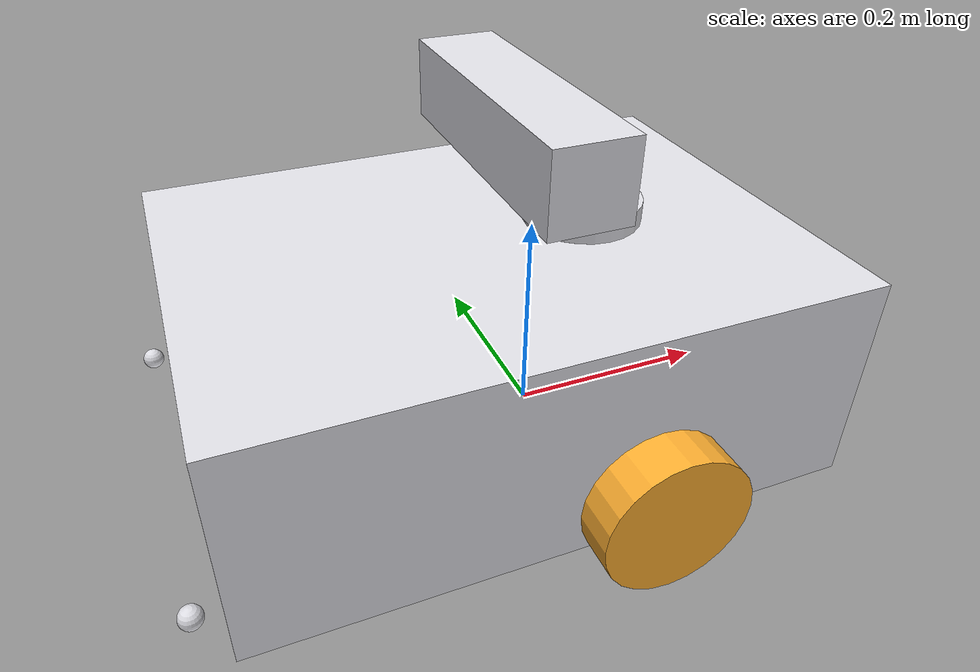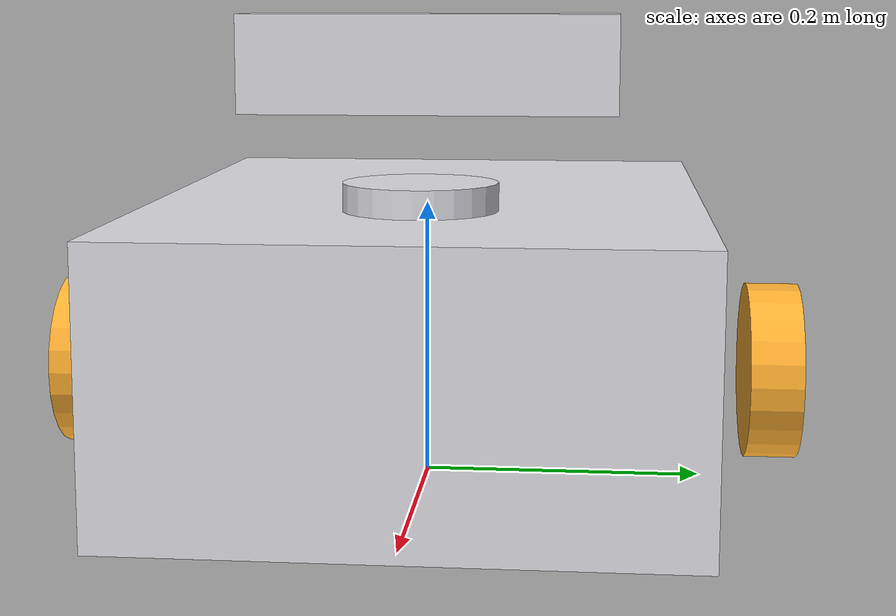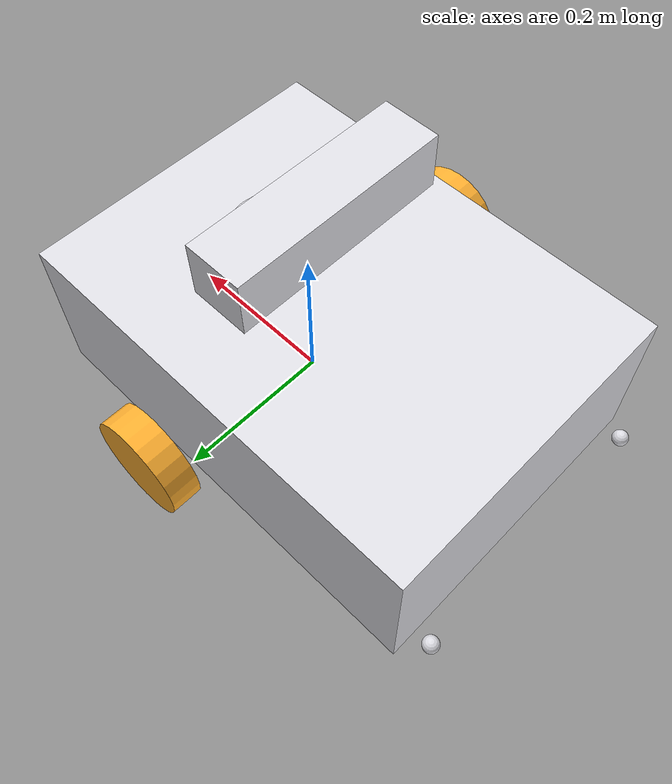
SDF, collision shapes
<sdf version='1.11'>
  <model name='swd_starter_kit'>
    <link name='base_footprint'>
      <inertial>
        <pose>-0.049742741639103263 0 0.1010749724366042 0 0 0</pose>
        <mass>27.210000000000001</mass>
        <inertia>
          <ixx>0.7160438070562295</ixx>
          <ixy>0</ixy>
          <ixz>-0.001217475192943712</ixz>
          <iyy>0.7176530062477029</iyy>
          <iyz>0</iyz>
          <izz>1.318387199191474</izz>
        </inertia>
      </inertial>

      <collision name='base_footprint_fixed_joint_lump__base_link_collision'>
        <pose>-0.050000000000000003 0 0.10000000000000001 0 0 0</pose>
        <geometry>
          <box>
            <size>0.55000000000000004 0.40000000000000002 0.20000000000000001</size>
          </box>
        </geometry>
      </collision>

      <collision name='base_footprint_fixed_joint_lump__laser_collision_1'>
        <pose>0.050000000000000003 0 0.20000000000000001 0 0 0</pose>
        <geometry>
          <cylinder>
            <length>0.040000000000000001</length>
            <radius>0.055</radius>
          </cylinder>
        </geometry>
      </collision>

      <collision name='base_footprint_fixed_joint_lump__camera_link_collision_2'>
        <pose>-0.02 0 0.29999999999999999 0 0 0</pose>
        <geometry>
          <box>
            <size>0.072999999999999995 0.27600000000000002 0.071999999999999995</size>
          </box>
        </geometry>
      </collision>

      <collision name='base_footprint_fixed_joint_lump__caster_back_left_link_collision_3'>
        <pose>-0.34999999999999998 0.17100000000000001 0.025000000000000001 0 0 0</pose>
        <geometry>
          <sphere>
            <radius>0.01</radius>
          </sphere>
        </geometry>
      </collision>

      <collision name='base_footprint_fixed_joint_lump__caster_back_right_link_collision_4'>
        <pose>-0.34999999999999998 -0.16900000000000001 0.025000000000000001 0 0 0</pose>
        <geometry>
          <sphere>
            <radius>0.01</radius>
          </sphere>
        </geometry>
      </collision>

      <visual name='base_footprint_fixed_joint_lump__base_link_visual'>
        <pose>-0.46000000000000002 -0.27000000000000002 0 0 0 0</pose>
        <geometry>
          <mesh>
            <scale>0.001 0.001 0.001</scale>
            <uri>file:///home/fatma/ws_ros2/src/swd_starter_kit_description/meshes/starter_kit_base.stl</uri>
          </mesh>
        </geometry>
        <material>
          <diffuse>0.875 0.875 0.900000036 1</diffuse>
          <ambient>0.875 0.875 0.900000036 1</ambient>
        </material>
      </visual>

      <visual name='base_footprint_fixed_joint_lump__base_link_visual_1'>
        <pose>-0.46000000000000002 -0.27000000000000002 0 0 0 0</pose>
        <geometry>
          <mesh>
            <scale>0.001 0.001 0.001</scale>
            <uri>file:///home/fatma/ws_ros2/src/swd_starter_kit_description/meshes/starter_kit.stl</uri>
          </mesh>
        </geometry>
        <material>
          <diffuse>0.25 0.25 0.275000006 1</diffuse>
          <ambient>0.25 0.25 0.275000006 1</ambient>
        </material>
      </visual>

      <visual name='base_footprint_fixed_joint_lump__base_link_visual_2'>
        <pose>-0.050000000000000003 0 0.17999999999999999 0 0 0</pose>
        <geometry>
          <box>
            <size>0.55000000000000004 0.40000000000000002 0.01</size>
          </box>
        </geometry>
        <material>
          <diffuse>1 1 1 0.25</diffuse>
          <ambient>1 1 1 0.25</ambient>
        </material>
      </visual>

      <visual name='base_footprint_fixed_joint_lump__laser_visual_3'>
        <pose>0.050000000000000003 0 0.19 0 0 0</pose>
        <geometry>
          <cylinder>
            <length>0.02</length>
            <radius>0.044999999999999998</radius>
          </cylinder>
        </geometry>
        <material>
          <diffuse>0.0625 0.0625 0.0625 1</diffuse>
          <ambient>0.0625 0.0625 0.0625 1</ambient>
        </material>
      </visual>

      <visual name='base_footprint_fixed_joint_lump__laser_visual_4'>
        <pose>0.050000000000000003 0 0.20999999999999999 0 0 0</pose>
        <geometry>
          <cylinder>
            <length>0.02</length>
            <radius>0.055</radius>
          </cylinder>
        </geometry>
        <material>
          <diffuse>1 1 0.25 1</diffuse>
          <ambient>1 1 0.25 1</ambient>
        </material>
      </visual>

      <visual name='base_footprint_fixed_joint_lump__camera_link_visual_5'>
        <pose>-0.02 0 0.29999999999999999 0 0 0</pose>
        <geometry>
          <box>
            <size>0.072999999999999995 0.27600000000000002 0.071999999999999995</size>
          </box>
        </geometry>
        <material>
          <diffuse>0.0625 0.0625 0.0625 1</diffuse>
          <ambient>0.0625 0.0625 0.0625 1</ambient>
        </material>
      </visual>

      <visual name='base_footprint_fixed_joint_lump__caster_back_left_link_visual_6'>
        <pose>-0.34999999999999998 0.17100000000000001 0.025000000000000001 0 0 0</pose>
        <geometry>
          <sphere>
            <radius>0.012999999999999999</radius>
          </sphere>
        </geometry>
        <material>
          <diffuse>1 1 1 1</diffuse>
          <ambient>1 1 1 1</ambient>
        </material>
      </visual>

      <visual name='base_footprint_fixed_joint_lump__caster_back_right_link_visual_7'>
        <pose>-0.34999999999999998 -0.16900000000000001 0.025000000000000001 0 0 0</pose>
        <geometry>
          <sphere>
            <radius>0.012999999999999999</radius>
          </sphere>
        </geometry>
        <material>
          <diffuse>1 1 1 1</diffuse>
          <ambient>1 1 1 1</ambient>
        </material>
      </visual>

      <sensor name='gpu_lidar' type='gpu_lidar'>
        <pose>0.05 0 0.2 0 0 0</pose>
        <topic>lidar</topic>
        <update_rate>10</update_rate>
        <lidar>
          <scan>
            <horizontal>
              <samples>1080</samples>
              <resolution>1</resolution>
              <min_angle>-2.356194496154785</min_angle>
              <max_angle>2.356194496154785</max_angle>
            </horizontal>
            <vertical>
              <samples>1</samples>
              <resolution>1</resolution>
              <min_angle>0.0</min_angle>
              <max_angle>0.0</max_angle>
            </vertical>
          </scan>
          <range>
            <min>0.09</min>
            <max>20.0</max>
            <resolution>0.001</resolution>
          </range>
        </lidar>
        <alwaysOn>1</alwaysOn>
        <visualize>true</visualize>
      </sensor>
    </link>

    <joint name='base_swd_left_joint' type='revolute'>
      <pose relative_to='base_footprint'>0 0.25 0.080000000000000002 -1.5700000000000001 0 0</pose>
      <parent>base_footprint</parent>
      <child>swd_left_link</child>
      <axis>
        <xyz>0 0 1</xyz>
        <limit>
          <lower>-inf</lower>
          <upper>inf</upper>
        </limit>
        <dynamics>
          <spring_reference>0</spring_reference>
          <spring_stiffness>0</spring_stiffness>
        </dynamics>
      </axis>
    </joint>

    <link name='swd_left_link'>
      <pose relative_to='base_swd_left_joint'>0 0 0 0 0 0</pose>
      <inertial>
        <pose>0 0 0 0 0 0</pose>
        <mass>1</mass>
        <inertia>
          <ixx>0.0011100000000000001</ixx>
          <ixy>0</ixy>
          <ixz>0</ixz>
          <iyy>0.0011100000000000001</iyy>
          <iyz>0</iyz>
          <izz>0.00198</izz>
        </inertia>
      </inertial>
      <collision name='swd_left_link_collision'>
        <pose>0 0 0 0 0 0</pose>
        <geometry>
          <cylinder>
            <length>0.036999999999999998</length>
            <radius>0.063</radius>
          </cylinder>
        </geometry>
      </collision>
      <visual name='swd_left_link_visual'>
        <pose>0 0 0 1.5700000000000001 0 0</pose>
        <geometry>
          <mesh>
            <scale>0.001 0.001 0.001</scale>
            <uri>file:///home/fatma/ws_ros2/src/swd_starter_kit_description/meshes/wheels/starter_kit_left_tire.stl</uri>
          </mesh>
        </geometry>
        <material>
          <diffuse>1 0.6875 0.187500015 1</diffuse>
          <ambient>1 0.6875 0.187500015 1</ambient>
        </material>
      </visual>
    </link>

    <joint name='base_swd_right_joint' type='revolute'>
      <pose relative_to='base_footprint'>0 -0.25 0.080000000000000002 -1.5700000000000001 0 0</pose>
      <parent>base_footprint</parent>
      <child>swd_right_link</child>
      <axis>
        <xyz>0 0 1</xyz>
        <limit>
          <lower>-inf</lower>
          <upper>inf</upper>
        </limit>
        <dynamics>
          <spring_reference>0</spring_reference>
          <spring_stiffness>0</spring_stiffness>
        </dynamics>
      </axis>
    </joint>

    <link name='swd_right_link'>
      <pose relative_to='base_swd_right_joint'>0 0 0 0 0 0</pose>
      <inertial>
        <pose>0 0 0 0 0 0</pose>
        <mass>1</mass>
        <inertia>
          <ixx>0.0011100000000000001</ixx>
          <ixy>0</ixy>
          <ixz>0</ixz>
          <iyy>0.0011100000000000001</iyy>
          <iyz>0</iyz>
          <izz>0.00198</izz>
        </inertia>
      </inertial>
      <collision name='swd_right_link_collision'>
        <pose>0 0 0 0 0 0</pose>
        <geometry>
          <cylinder>
            <length>0.036999999999999998</length>
            <radius>0.063</radius>
          </cylinder>
        </geometry>
      </collision>
      <visual name='swd_right_link_visual'>
        <pose>0 0 0 1.5700000000000001 0 0</pose>
        <geometry>
          <mesh>
            <scale>0.001 0.001 0.001</scale>
            <uri>file:///home/fatma/ws_ros2/src/swd_starter_kit_description/meshes/wheels/starter_kit_right_tire.stl</uri>
          </mesh>
        </geometry>
        <material>
          <diffuse>1 0.6875 0.187500015 1</diffuse>
          <ambient>1 0.6875 0.187500015 1</ambient>
        </material>
      </visual>
    </link>

    <frame name='base_laser' attached_to='base_link'>
      <pose>0.050000000000000003 0 0.20000000000000001 0 0 0</pose>
    </frame>
    <frame name='laser' attached_to='base_laser'>
      <pose>0 0 0 0 0 0</pose>
    </frame>
    <frame name='camera_joint' attached_to='base_link'>
      <pose>-0.050000000000000003 0 0.29999999999999999 0 0 0</pose>
    </frame>
    <frame name='camera_link' attached_to='camera_joint'>
      <pose>0 0 0 0 0 0</pose>
    </frame>
    <frame name='caster_back_left_joint' attached_to='base_link'>
      <pose>-0.34999999999999998 0.17000000000000001 0.025000000000000001 0 0 0</pose>
    </frame>
    <frame name='caster_back_left_link' attached_to='caster_back_left_joint'>
      <pose>0 0 0 0 0 0</pose>
    </frame>
    <frame name='caster_back_right_joint' attached_to='base_link'>
      <pose>-0.34999999999999998 -0.17000000000000001 0.025000000000000001 0 0 0</pose>
    </frame>
    <frame name='caster_back_right_link' attached_to='caster_back_right_joint'>
      <pose>0 0 0 0 0 0</pose>
    </frame>
    <frame name='base_joint' attached_to='base_footprint'>
      <pose>0 0 0 0 0 0</pose>
    </frame>
    <frame name='base_link' attached_to='base_joint'>
      <pose>0 0 0 0 0 0</pose>
    </frame>
  </model>
</sdf>
